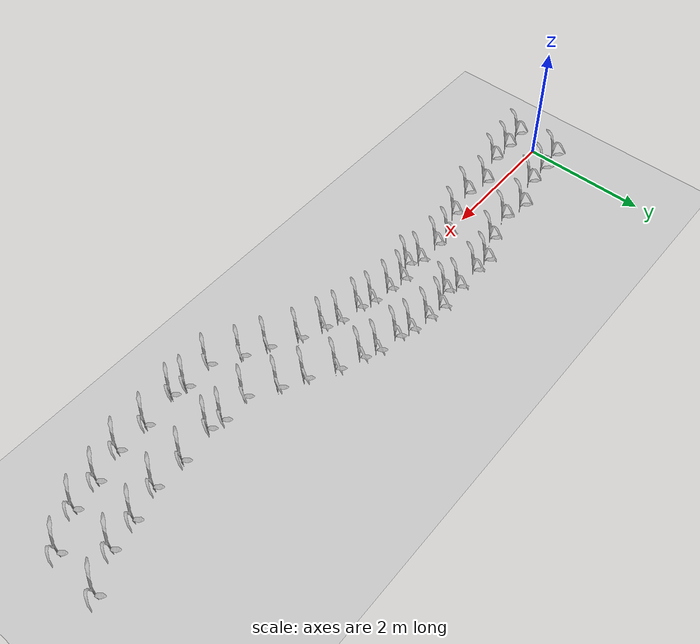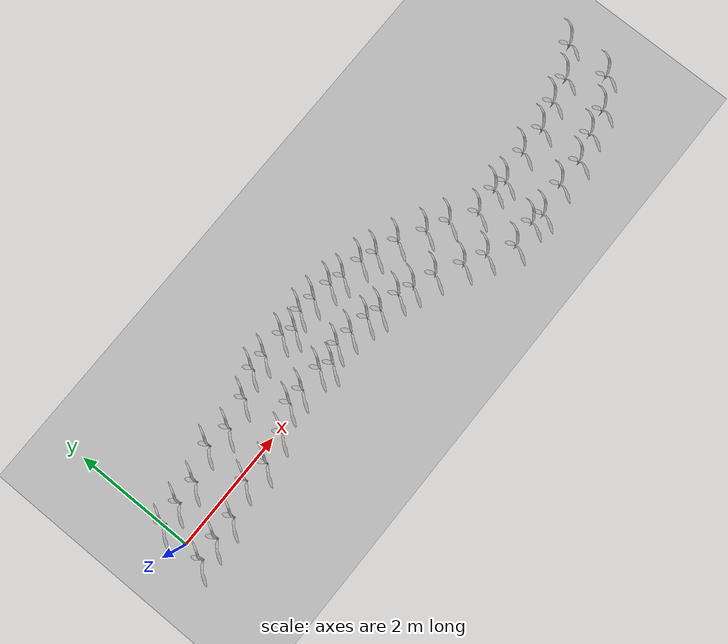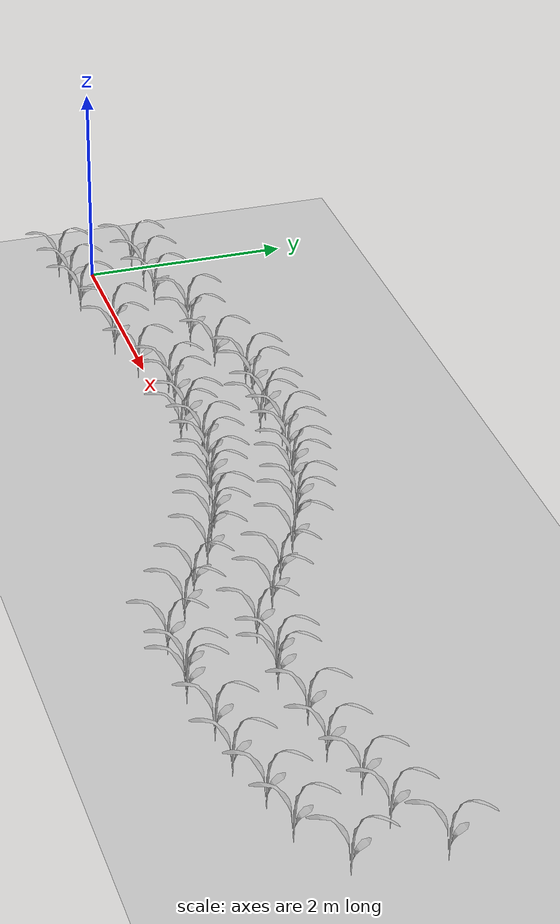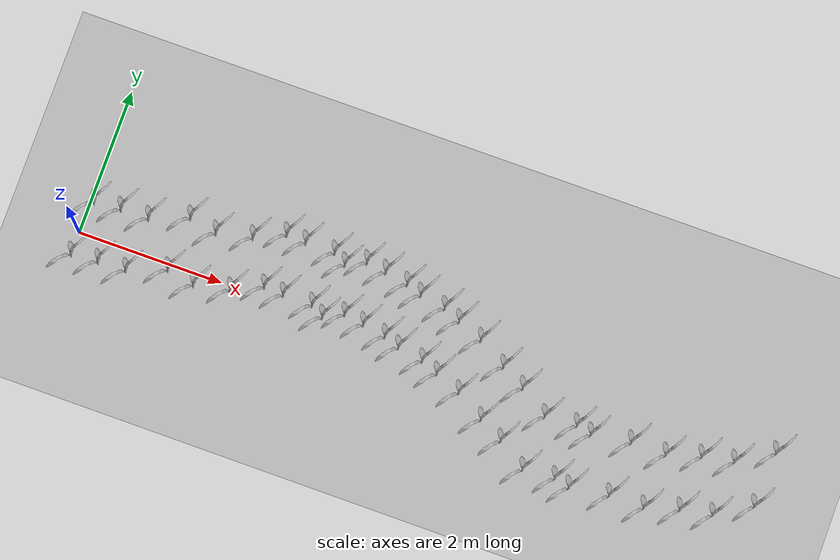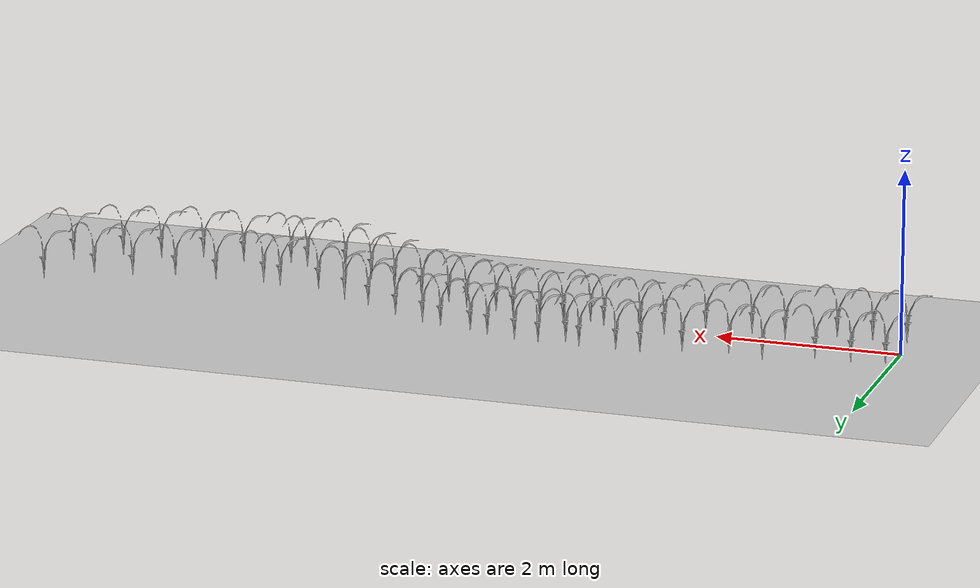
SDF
<sdf version="1.7">
 <world name="default">
  <model name="ground_plane">
   <static>1</static>
   <link name="link">
    <collision name="collision">
     <geometry><plane><normal>0 0 1</normal><size>100 100</size></plane></geometry>
     <surface>
      <contact><collide_bitmask>65535</collide_bitmask></contact>
      <friction><ode><mu>100</mu><mu2>50</mu2></ode></friction>
     </surface>
    </collision>
    <visual name="visual">
     <cast_shadows>0</cast_shadows>
     <geometry><plane><normal>0 0 1</normal><size>100 100</size></plane></geometry>
     <material>
      <script><uri>file://media/materials/scripts/gazebo.material</uri><name>Gazebo/Grey</name></script>
     </material>
    </visual>
   </link>
  </model>
  <model name="maize_row">
   <model name="maize_02">
    <pose>-4.63661 0.027408 0 0 -0 0</pose>
    <link name="maize_02_link">
     <inertial>
      <pose>0 0 0.01 0 -0 0</pose>
      <mass>0.3</mass>
      <inertia>
       <ixx>0.00334167</ixx>
       <ixy>0</ixy>
       <ixz>0</ixz>
       <iyy>0.00334167</iyy>
       <iyz>0</iyz>
       <izz>1.66667e-05</izz>
      </inertia>
      <pose>0 0 0.1 0 -0 0</pose>
     </inertial>
     <collision name="collision">
      <pose>0 0 0.2 0 -0 0</pose>
      <geometry><box><size>0.02 0.02 0.4</size></box></geometry>
      <surface><friction><ode><mu>10</mu><mu2>10</mu2></ode></friction></surface>
     </collision>
     <visual name="visual">
      <geometry>
       <mesh><uri>model://maize_02/meshes/maize_02.dae</uri><scale>0.683166 0.683166 0.683166</scale></mesh>
      </geometry>
     </visual>
    </link>
   </model>
   <model name="maize_02_clone">
    <pose>-4.27241 0.05616 0 0 -0 0</pose>
    <link name="maize_02_link">
     <inertial>
      <pose>0 0 0.01 0 -0 0</pose>
      <mass>0.3</mass>
      <inertia>
       <ixx>0.00334167</ixx>
       <ixy>0</ixy>
       <ixz>0</ixz>
       <iyy>0.00334167</iyy>
       <iyz>0</iyz>
       <izz>1.66667e-05</izz>
      </inertia>
      <pose>0 0 0.1 0 -0 0</pose>
     </inertial>
     <collision name="collision">
      <pose>0 0 0.2 0 -0 0</pose>
      <geometry><box><size>0.02 0.02 0.4</size></box></geometry>
      <surface><friction><ode><mu>10</mu><mu2>10</mu2></ode></friction></surface>
     </collision>
     <visual name="visual">
      <geometry>
       <mesh><uri>model://maize_02/meshes/maize_02.dae</uri><scale>0.683166 0.683166 0.683166</scale></mesh>
      </geometry>
     </visual>
    </link>
   </model>
   <model name="maize_02_clone_0">
    <pose>-3.88904 0.065744 0 0 -0 0</pose>
    <link name="maize_02_link">
     <inertial>
      <pose>0 0 0.01 0 -0 0</pose>
      <mass>0.3</mass>
      <inertia>
       <ixx>0.00334167</ixx>
       <ixy>0</ixy>
       <ixz>0</ixz>
       <iyy>0.00334167</iyy>
       <iyz>0</iyz>
       <izz>1.66667e-05</izz>
      </inertia>
      <pose>0 0 0.1 0 -0 0</pose>
     </inertial>
     <collision name="collision">
      <pose>0 0 0.2 0 -0 0</pose>
      <geometry><box><size>0.02 0.02 0.4</size></box></geometry>
      <surface><friction><ode><mu>10</mu><mu2>10</mu2></ode></friction></surface>
     </collision>
     <visual name="visual">
      <geometry>
       <mesh><uri>model://maize_02/meshes/maize_02.dae</uri><scale>0.683166 0.683166 0.683166</scale></mesh>
      </geometry>
     </visual>
    </link>
   </model>
   <model name="maize_02_clone_1">
    <pose>-3.37149 0.257428 0 0 -0 0</pose>
    <link name="maize_02_link">
     <inertial>
      <pose>0 0 0.01 0 -0 0</pose>
      <mass>0.3</mass>
      <inertia>
       <ixx>0.00334167</ixx>
       <ixy>0</ixy>
       <ixz>0</ixz>
       <iyy>0.00334167</iyy>
       <iyz>0</iyz>
       <izz>1.66667e-05</izz>
      </inertia>
      <pose>0 0 0.1 0 -0 0</pose>
     </inertial>
     <collision name="collision">
      <pose>0 0 0.2 0 -0 0</pose>
      <geometry><box><size>0.02 0.02 0.4</size></box></geometry>
      <surface><friction><ode><mu>10</mu><mu2>10</mu2></ode></friction></surface>
     </collision>
     <visual name="visual">
      <geometry>
       <mesh><uri>model://maize_02/meshes/maize_02.dae</uri><scale>0.683166 0.683166 0.683166</scale></mesh>
      </geometry>
     </visual>
    </link>
   </model>
   <model name="maize_02_clone_10">
    <pose>-0.393317 0.390237 0 0 -0 0</pose>
    <link name="maize_02_link">
     <inertial>
      <pose>0 0 0.01 0 -0 0</pose>
      <mass>0.3</mass>
      <inertia>
       <ixx>0.00334167</ixx>
       <ixy>0</ixy>
       <ixz>0</ixz>
       <iyy>0.00334167</iyy>
       <iyz>0</iyz>
       <izz>1.66667e-05</izz>
      </inertia>
      <pose>0 0 0.1 0 -0 0</pose>
     </inertial>
     <collision name="collision">
      <pose>0 0 0.2 0 -0 0</pose>
      <geometry><box><size>0.02 0.02 0.4</size></box></geometry>
      <surface><friction><ode><mu>10</mu><mu2>10</mu2></ode></friction></surface>
     </collision>
     <visual name="visual">
      <geometry>
       <mesh><uri>model://maize_02/meshes/maize_02.dae</uri><scale>0.683166 0.683166 0.683166</scale></mesh>
      </geometry>
     </visual>
    </link>
   </model>
   <model name="maize_02_clone_11">
    <pose>0.410873 0.154867 0 0 -0 0</pose>
    <link name="maize_02_link">
     <inertial>
      <pose>0 0 0.01 0 -0 0</pose>
      <mass>0.3</mass>
      <inertia>
       <ixx>0.00334167</ixx>
       <ixy>0</ixy>
       <ixz>0</ixz>
       <iyy>0.00334167</iyy>
       <iyz>0</iyz>
       <izz>1.66667e-05</izz>
      </inertia>
      <pose>0 0 0.1 0 -0 0</pose>
     </inertial>
     <collision name="collision">
      <pose>0 0 0.2 0 -0 0</pose>
      <geometry><box><size>0.02 0.02 0.4</size></box></geometry>
      <surface><friction><ode><mu>10</mu><mu2>10</mu2></ode></friction></surface>
     </collision>
     <visual name="visual">
      <geometry>
       <mesh><uri>model://maize_02/meshes/maize_02.dae</uri><scale>0.683166 0.683166 0.683166</scale></mesh>
      </geometry>
     </visual>
    </link>
   </model>
   <model name="maize_02_clone_12">
    <pose>0.175502 0.252945 0 0 -0 0</pose>
    <link name="maize_02_link">
     <inertial>
      <pose>0 0 0.01 0 -0 0</pose>
      <mass>0.3</mass>
      <inertia>
       <ixx>0.00334167</ixx>
       <ixy>0</ixy>
       <ixz>0</ixz>
       <iyy>0.00334167</iyy>
       <iyz>0</iyz>
       <izz>1.66667e-05</izz>
      </inertia>
      <pose>0 0 0.1 0 -0 0</pose>
     </inertial>
     <collision name="collision">
      <pose>0 0 0.2 0 -0 0</pose>
      <geometry><box><size>0.02 0.02 0.4</size></box></geometry>
      <surface><friction><ode><mu>10</mu><mu2>10</mu2></ode></friction></surface>
     </collision>
     <visual name="visual">
      <geometry>
       <mesh><uri>model://maize_02/meshes/maize_02.dae</uri><scale>0.683166 0.683166 0.683166</scale></mesh>
      </geometry>
     </visual>
    </link>
   </model>
   <model name="maize_02_clone_13">
    <pose>0.76395 0.017569 0 0 -0 0</pose>
    <link name="maize_02_link">
     <inertial>
      <pose>0 0 0.01 0 -0 0</pose>
      <mass>0.3</mass>
      <inertia>
       <ixx>0.00334167</ixx>
       <ixy>0</ixy>
       <ixz>0</ixz>
       <iyy>0.00334167</iyy>
       <iyz>0</iyz>
       <izz>1.66667e-05</izz>
      </inertia>
      <pose>0 0 0.1 0 -0 0</pose>
     </inertial>
     <collision name="collision">
      <pose>0 0 0.2 0 -0 0</pose>
      <geometry><box><size>0.02 0.02 0.4</size></box></geometry>
      <surface><friction><ode><mu>10</mu><mu2>10</mu2></ode></friction></surface>
     </collision>
     <visual name="visual">
      <geometry>
       <mesh><uri>model://maize_02/meshes/maize_02.dae</uri><scale>0.683166 0.683166 0.683166</scale></mesh>
      </geometry>
     </visual>
    </link>
   </model>
   <model name="maize_02_clone_14">
    <pose>1.15624 -0.217806 0 0 -0 0</pose>
    <link name="maize_02_link">
     <inertial>
      <pose>0 0 0.01 0 -0 0</pose>
      <mass>0.3</mass>
      <inertia>
       <ixx>0.00334167</ixx>
       <ixy>0</ixy>
       <ixz>0</ixz>
       <iyy>0.00334167</iyy>
       <iyz>0</iyz>
       <izz>1.66667e-05</izz>
      </inertia>
      <pose>0 0 0.1 0 -0 0</pose>
     </inertial>
     <collision name="collision">
      <pose>0 0 0.2 0 -0 0</pose>
      <geometry><box><size>0.02 0.02 0.4</size></box></geometry>
      <surface><friction><ode><mu>10</mu><mu2>10</mu2></ode></friction></surface>
     </collision>
     <visual name="visual">
      <geometry>
       <mesh><uri>model://maize_02/meshes/maize_02.dae</uri><scale>0.683166 0.683166 0.683166</scale></mesh>
      </geometry>
     </visual>
    </link>
   </model>
   <model name="maize_02_clone_15">
    <pose>1.48967 -0.39434 0 0 -0 0</pose>
    <link name="maize_02_link">
     <inertial>
      <pose>0 0 0.01 0 -0 0</pose>
      <mass>0.3</mass>
      <inertia>
       <ixx>0.00334167</ixx>
       <ixy>0</ixy>
       <ixz>0</ixz>
       <iyy>0.00334167</iyy>
       <iyz>0</iyz>
       <izz>1.66667e-05</izz>
      </inertia>
      <pose>0 0 0.1 0 -0 0</pose>
     </inertial>
     <collision name="collision">
      <pose>0 0 0.2 0 -0 0</pose>
      <geometry><box><size>0.02 0.02 0.4</size></box></geometry>
      <surface><friction><ode><mu>10</mu><mu2>10</mu2></ode></friction></surface>
     </collision>
     <visual name="visual">
      <geometry>
       <mesh><uri>model://maize_02/meshes/maize_02.dae</uri><scale>0.683166 0.683166 0.683166</scale></mesh>
      </geometry>
     </visual>
    </link>
   </model>
   <model name="maize_02_clone_16">
    <pose>1.88196 -0.649333 0 0 -0 0</pose>
    <link name="maize_02_link">
     <inertial>
      <pose>0 0 0.01 0 -0 0</pose>
      <mass>0.3</mass>
      <inertia>
       <ixx>0.00334167</ixx>
       <ixy>0</ixy>
       <ixz>0</ixz>
       <iyy>0.00334167</iyy>
       <iyz>0</iyz>
       <izz>1.66667e-05</izz>
      </inertia>
      <pose>0 0 0.1 0 -0 0</pose>
     </inertial>
     <collision name="collision">
      <pose>0 0 0.2 0 -0 0</pose>
      <geometry><box><size>0.02 0.02 0.4</size></box></geometry>
      <surface><friction><ode><mu>10</mu><mu2>10</mu2></ode></friction></surface>
     </collision>
     <visual name="visual">
      <geometry>
       <mesh><uri>model://maize_02/meshes/maize_02.dae</uri><scale>0.683166 0.683166 0.683166</scale></mesh>
      </geometry>
     </visual>
    </link>
   </model>
   <model name="maize_02_clone_17">
    <pose>2.52627 -0.672048 0 0 -0 0</pose>
    <link name="maize_02_link">
     <inertial>
      <pose>0 0 0.01 0 -0 0</pose>
      <mass>0.3</mass>
      <inertia>
       <ixx>0.00334167</ixx>
       <ixy>0</ixy>
       <ixz>0</ixz>
       <iyy>0.00334167</iyy>
       <iyz>0</iyz>
       <izz>1.66667e-05</izz>
      </inertia>
      <pose>0 0 0.1 0 -0 0</pose>
     </inertial>
     <collision name="collision">
      <pose>0 0 0.2 0 -0 0</pose>
      <geometry><box><size>0.02 0.02 0.4</size></box></geometry>
      <surface><friction><ode><mu>10</mu><mu2>10</mu2></ode></friction></surface>
     </collision>
     <visual name="visual">
      <geometry>
       <mesh><uri>model://maize_02/meshes/maize_02.dae</uri><scale>0.683166 0.683166 0.683166</scale></mesh>
      </geometry>
     </visual>
    </link>
   </model>
   <model name="maize_02_clone_18">
    <pose>2.3152 -0.619273 0 0 -0 0</pose>
    <link name="maize_02_link">
     <inertial>
      <pose>0 0 0.01 0 -0 0</pose>
      <mass>0.3</mass>
      <inertia>
       <ixx>0.00334167</ixx>
       <ixy>0</ixy>
       <ixz>0</ixz>
       <iyy>0.00334167</iyy>
       <iyz>0</iyz>
       <izz>1.66667e-05</izz>
      </inertia>
      <pose>0 0 0.1 0 -0 0</pose>
     </inertial>
     <collision name="collision">
      <pose>0 0 0.2 0 -0 0</pose>
      <geometry><box><size>0.02 0.02 0.4</size></box></geometry>
      <surface><friction><ode><mu>10</mu><mu2>10</mu2></ode></friction></surface>
     </collision>
     <visual name="visual">
      <geometry>
       <mesh><uri>model://maize_02/meshes/maize_02.dae</uri><scale>0.683166 0.683166 0.683166</scale></mesh>
      </geometry>
     </visual>
    </link>
   </model>
   <model name="maize_02_clone_19">
    <pose>3.05425 -0.592874 0 0 -0 0</pose>
    <link name="maize_02_link">
     <inertial>
      <pose>0 0 0.01 0 -0 0</pose>
      <mass>0.3</mass>
      <inertia>
       <ixx>0.00334167</ixx>
       <ixy>0</ixy>
       <ixz>0</ixz>
       <iyy>0.00334167</iyy>
       <iyz>0</iyz>
       <izz>1.66667e-05</izz>
      </inertia>
      <pose>0 0 0.1 0 -0 0</pose>
     </inertial>
     <collision name="collision">
      <pose>0 0 0.2 0 -0 0</pose>
      <geometry><box><size>0.02 0.02 0.4</size></box></geometry>
      <surface><friction><ode><mu>10</mu><mu2>10</mu2></ode></friction></surface>
     </collision>
     <visual name="visual">
      <geometry>
       <mesh><uri>model://maize_02/meshes/maize_02.dae</uri><scale>0.683166 0.683166 0.683166</scale></mesh>
      </geometry>
     </visual>
    </link>
   </model>
   <model name="maize_02_clone_2">
    <pose>-2.98813 0.180754 0 0 -0 0</pose>
    <link name="maize_02_link">
     <inertial>
      <pose>0 0 0.01 0 -0 0</pose>
      <mass>0.3</mass>
      <inertia>
       <ixx>0.00334167</ixx>
       <ixy>0</ixy>
       <ixz>0</ixz>
       <iyy>0.00334167</iyy>
       <iyz>0</iyz>
       <izz>1.66667e-05</izz>
      </inertia>
      <pose>0 0 0.1 0 -0 0</pose>
     </inertial>
     <collision name="collision">
      <pose>0 0 0.2 0 -0 0</pose>
      <geometry><box><size>0.02 0.02 0.4</size></box></geometry>
      <surface><friction><ode><mu>10</mu><mu2>10</mu2></ode></friction></surface>
     </collision>
     <visual name="visual">
      <geometry>
       <mesh><uri>model://maize_02/meshes/maize_02.dae</uri><scale>0.683166 0.683166 0.683166</scale></mesh>
      </geometry>
     </visual>
    </link>
   </model>
   <model name="maize_02_clone_20">
    <pose>3.5294 -0.592874 0 0 -0 0</pose>
    <link name="maize_02_link">
     <inertial>
      <pose>0 0 0.01 0 -0 0</pose>
      <mass>0.3</mass>
      <inertia>
       <ixx>0.00334167</ixx>
       <ixy>0</ixy>
       <ixz>0</ixz>
       <iyy>0.00334167</iyy>
       <iyz>0</iyz>
       <izz>1.66667e-05</izz>
      </inertia>
      <pose>0 0 0.1 0 -0 0</pose>
     </inertial>
     <collision name="collision">
      <pose>0 0 0.2 0 -0 0</pose>
      <geometry><box><size>0.02 0.02 0.4</size></box></geometry>
      <surface><friction><ode><mu>10</mu><mu2>10</mu2></ode></friction></surface>
     </collision>
     <visual name="visual">
      <geometry>
       <mesh><uri>model://maize_02/meshes/maize_02.dae</uri><scale>0.683166 0.683166 0.683166</scale></mesh>
      </geometry>
     </visual>
    </link>
   </model>
   <model name="maize_02_clone_21">
    <pose>3.97801 -0.460902 0 0 -0 0</pose>
    <link name="maize_02_link">
     <inertial>
      <pose>0 0 0.01 0 -0 0</pose>
      <mass>0.3</mass>
      <inertia>
       <ixx>0.00334167</ixx>
       <ixy>0</ixy>
       <ixz>0</ixz>
       <iyy>0.00334167</iyy>
       <iyz>0</iyz>
       <izz>1.66667e-05</izz>
      </inertia>
      <pose>0 0 0.1 0 -0 0</pose>
     </inertial>
     <collision name="collision">
      <pose>0 0 0.2 0 -0 0</pose>
      <geometry><box><size>0.02 0.02 0.4</size></box></geometry>
      <surface><friction><ode><mu>10</mu><mu2>10</mu2></ode></friction></surface>
     </collision>
     <visual name="visual">
      <geometry>
       <mesh><uri>model://maize_02/meshes/maize_02.dae</uri><scale>0.683166 0.683166 0.683166</scale></mesh>
      </geometry>
     </visual>
    </link>
   </model>
   <model name="maize_02_clone_22">
    <pose>4.40033 -0.381713 0 0 -0 0</pose>
    <link name="maize_02_link">
     <inertial>
      <pose>0 0 0.01 0 -0 0</pose>
      <mass>0.3</mass>
      <inertia>
       <ixx>0.00334167</ixx>
       <ixy>0</ixy>
       <ixz>0</ixz>
       <iyy>0.00334167</iyy>
       <iyz>0</iyz>
       <izz>1.66667e-05</izz>
      </inertia>
      <pose>0 0 0.1 0 -0 0</pose>
     </inertial>
     <collision name="collision">
      <pose>0 0 0.2 0 -0 0</pose>
      <geometry><box><size>0.02 0.02 0.4</size></box></geometry>
      <surface><friction><ode><mu>10</mu><mu2>10</mu2></ode></friction></surface>
     </collision>
     <visual name="visual">
      <geometry>
       <mesh><uri>model://maize_02/meshes/maize_02.dae</uri><scale>0.683166 0.683166 0.683166</scale></mesh>
      </geometry>
     </visual>
    </link>
   </model>
   <model name="maize_02_clone_23">
    <pose>4.87542 -0.091378 0 0 -0 0</pose>
    <link name="maize_02_link">
     <inertial>
      <pose>0 0 0.01 0 -0 0</pose>
      <mass>0.3</mass>
      <inertia>
       <ixx>0.00334167</ixx>
       <ixy>0</ixy>
       <ixz>0</ixz>
       <iyy>0.00334167</iyy>
       <iyz>0</iyz>
       <izz>1.66667e-05</izz>
      </inertia>
      <pose>0 0 0.1 0 -0 0</pose>
     </inertial>
     <collision name="collision">
      <pose>0 0 0.2 0 -0 0</pose>
      <geometry><box><size>0.02 0.02 0.4</size></box></geometry>
      <surface><friction><ode><mu>10</mu><mu2>10</mu2></ode></friction></surface>
     </collision>
     <visual name="visual">
      <geometry>
       <mesh><uri>model://maize_02/meshes/maize_02.dae</uri><scale>0.683166 0.683166 0.683166</scale></mesh>
      </geometry>
     </visual>
    </link>
   </model>
   <model name="maize_02_clone_24">
    <pose>-0.987177 0.483854 0 0 -0 0</pose>
    <link name="maize_02_link">
     <inertial>
      <pose>0 0 0.01 0 -0 0</pose>
      <mass>0.3</mass>
      <inertia>
       <ixx>0.00334167</ixx>
       <ixy>0</ixy>
       <ixz>0</ixz>
       <iyy>0.00334167</iyy>
       <iyz>0</iyz>
       <izz>1.66667e-05</izz>
      </inertia>
      <pose>0 0 0.1 0 -0 0</pose>
     </inertial>
     <collision name="collision">
      <pose>0 0 0.2 0 -0 0</pose>
      <geometry><box><size>0.02 0.02 0.4</size></box></geometry>
      <surface><friction><ode><mu>10</mu><mu2>10</mu2></ode></friction></surface>
     </collision>
     <visual name="visual">
      <geometry>
       <mesh><uri>model://maize_02/meshes/maize_02.dae</uri><scale>0.683166 0.683166 0.683166</scale></mesh>
      </geometry>
     </visual>
    </link>
   </model>
   <model name="maize_02_clone_3">
    <pose>-2.50892 0.28618 0 0 -0 0</pose>
    <link name="maize_02_link">
     <inertial>
      <pose>0 0 0.01 0 -0 0</pose>
      <mass>0.3</mass>
      <inertia>
       <ixx>0.00334167</ixx>
       <ixy>0</ixy>
       <ixz>0</ixz>
       <iyy>0.00334167</iyy>
       <iyz>0</iyz>
       <izz>1.66667e-05</izz>
      </inertia>
      <pose>0 0 0.1 0 -0 0</pose>
     </inertial>
     <collision name="collision">
      <pose>0 0 0.2 0 -0 0</pose>
      <geometry><box><size>0.02 0.02 0.4</size></box></geometry>
      <surface><friction><ode><mu>10</mu><mu2>10</mu2></ode></friction></surface>
     </collision>
     <visual name="visual">
      <geometry>
       <mesh><uri>model://maize_02/meshes/maize_02.dae</uri><scale>0.683166 0.683166 0.683166</scale></mesh>
      </geometry>
     </visual>
    </link>
   </model>
   <model name="maize_02_clone_4">
    <pose>-1.83451 0.458469 0 0 -0 0</pose>
    <link name="maize_02_link">
     <inertial>
      <pose>0 0 0.01 0 -0 0</pose>
      <mass>0.3</mass>
      <inertia>
       <ixx>0.00334167</ixx>
       <ixy>0</ixy>
       <ixz>0</ixz>
       <iyy>0.00334167</iyy>
       <iyz>0</iyz>
       <izz>1.66667e-05</izz>
      </inertia>
      <pose>0 0 0.1 0 -0 0</pose>
     </inertial>
     <collision name="collision">
      <pose>0 0 0.2 0 -0 0</pose>
      <geometry><box><size>0.02 0.02 0.4</size></box></geometry>
      <surface><friction><ode><mu>10</mu><mu2>10</mu2></ode></friction></surface>
     </collision>
     <visual name="visual">
      <geometry>
       <mesh><uri>model://maize_02/meshes/maize_02.dae</uri><scale>0.683166 0.683166 0.683166</scale></mesh>
      </geometry>
     </visual>
    </link>
   </model>
   <model name="maize_02_clone_5">
    <pose>-1.25106 0.353746 0 0 -0 0</pose>
    <link name="maize_02_link">
     <inertial>
      <pose>0 0 0.01 0 -0 0</pose>
      <mass>0.3</mass>
      <inertia>
       <ixx>0.00334167</ixx>
       <ixy>0</ixy>
       <ixz>0</ixz>
       <iyy>0.00334167</iyy>
       <iyz>0</iyz>
       <izz>1.66667e-05</izz>
      </inertia>
      <pose>0 0 0.1 0 -0 0</pose>
     </inertial>
     <collision name="collision">
      <pose>0 0 0.2 0 -0 0</pose>
      <geometry><box><size>0.02 0.02 0.4</size></box></geometry>
      <surface><friction><ode><mu>10</mu><mu2>10</mu2></ode></friction></surface>
     </collision>
     <visual name="visual">
      <geometry>
       <mesh><uri>model://maize_02/meshes/maize_02.dae</uri><scale>0.683166 0.683166 0.683166</scale></mesh>
      </geometry>
     </visual>
    </link>
   </model>
   <model name="maize_02_clone_6">
    <pose>-1.43059 0.458469 0 0 -0 0</pose>
    <link name="maize_02_link">
     <inertial>
      <pose>0 0 0.01 0 -0 0</pose>
      <mass>0.3</mass>
      <inertia>
       <ixx>0.00334167</ixx>
       <ixy>0</ixy>
       <ixz>0</ixz>
       <iyy>0.00334167</iyy>
       <iyz>0</iyz>
       <izz>1.66667e-05</izz>
      </inertia>
      <pose>0 0 0.1 0 -0 0</pose>
     </inertial>
     <collision name="collision">
      <pose>0 0 0.2 0 -0 0</pose>
      <geometry><box><size>0.02 0.02 0.4</size></box></geometry>
      <surface><friction><ode><mu>10</mu><mu2>10</mu2></ode></friction></surface>
     </collision>
     <visual name="visual">
      <geometry>
       <mesh><uri>model://maize_02/meshes/maize_02.dae</uri><scale>0.683166 0.683166 0.683166</scale></mesh>
      </geometry>
     </visual>
    </link>
   </model>
   <model name="maize_02_clone_7">
    <pose>-2.10378 0.473427 0 0 -0 0</pose>
    <link name="maize_02_link">
     <inertial>
      <pose>0 0 0.01 0 -0 0</pose>
      <mass>0.3</mass>
      <inertia>
       <ixx>0.00334167</ixx>
       <ixy>0</ixy>
       <ixz>0</ixz>
       <iyy>0.00334167</iyy>
       <iyz>0</iyz>
       <izz>1.66667e-05</izz>
      </inertia>
      <pose>0 0 0.1 0 -0 0</pose>
     </inertial>
     <collision name="collision">
      <pose>0 0 0.2 0 -0 0</pose>
      <geometry><box><size>0.02 0.02 0.4</size></box></geometry>
      <surface><friction><ode><mu>10</mu><mu2>10</mu2></ode></friction></surface>
     </collision>
     <visual name="visual">
      <geometry>
       <mesh><uri>model://maize_02/meshes/maize_02.dae</uri><scale>0.683166 0.683166 0.683166</scale></mesh>
      </geometry>
     </visual>
    </link>
   </model>
   <model name="maize_02_clone_8">
    <pose>-0.712516 0.443508 0 0 -0 0</pose>
    <link name="maize_02_link">
     <inertial>
      <pose>0 0 0.01 0 -0 0</pose>
      <mass>0.3</mass>
      <inertia>
       <ixx>0.00334167</ixx>
       <ixy>0</ixy>
       <ixz>0</ixz>
       <iyy>0.00334167</iyy>
       <iyz>0</iyz>
       <izz>1.66667e-05</izz>
      </inertia>
      <pose>0 0 0.1 0 -0 0</pose>
     </inertial>
     <collision name="collision">
      <pose>0 0 0.2 0 -0 0</pose>
      <geometry><box><size>0.02 0.02 0.4</size></box></geometry>
      <surface><friction><ode><mu>10</mu><mu2>10</mu2></ode></friction></surface>
     </collision>
     <visual name="visual">
      <geometry>
       <mesh><uri>model://maize_02/meshes/maize_02.dae</uri><scale>0.683166 0.683166 0.683166</scale></mesh>
      </geometry>
     </visual>
    </link>
   </model>
   <model name="maize_02_clone_9">
    <pose>-0.177553 0.311777 0 0 -0 0</pose>
    <link name="maize_02_link">
     <inertial>
      <pose>0 0 0.01 0 -0 0</pose>
      <mass>0.3</mass>
      <inertia>
       <ixx>0.00334167</ixx>
       <ixy>0</ixy>
       <ixz>0</ixz>
       <iyy>0.00334167</iyy>
       <iyz>0</iyz>
       <izz>1.66667e-05</izz>
      </inertia>
      <pose>0 0 0.1 0 -0 0</pose>
     </inertial>
     <collision name="collision">
      <pose>0 0 0.2 0 -0 0</pose>
      <geometry><box><size>0.02 0.02 0.4</size></box></geometry>
      <surface><friction><ode><mu>10</mu><mu2>10</mu2></ode></friction></surface>
     </collision>
     <visual name="visual">
      <geometry>
       <mesh><uri>model://maize_02/meshes/maize_02.dae</uri><scale>0.683166 0.683166 0.683166</scale></mesh>
      </geometry>
     </visual>
    </link>
   </model>
   <static>0</static>
   <pose>4.70004 0.375 2e-05 0 -4e-06 0</pose>
  </model>
  <model name="maize_row_clone">
   <model name="maize_02">
    <pose>-4.63661 0.027408 0 0 -0 0</pose>
    <link name="maize_02_link">
     <inertial>
      <pose>0 0 0.01 0 -0 0</pose>
      <mass>0.3</mass>
      <inertia>
       <ixx>0.00334167</ixx>
       <ixy>0</ixy>
       <ixz>0</ixz>
       <iyy>0.00334167</iyy>
       <iyz>0</iyz>
       <izz>1.66667e-05</izz>
      </inertia>
      <pose>0 0 0.1 0 -0 0</pose>
     </inertial>
     <collision name="collision">
      <pose>0 0 0.2 0 -0 0</pose>
      <geometry><box><size>0.02 0.02 0.4</size></box></geometry>
      <surface><friction><ode><mu>10</mu><mu2>10</mu2></ode></friction></surface>
     </collision>
     <visual name="visual">
      <geometry>
       <mesh><uri>model://maize_02/meshes/maize_02.dae</uri><scale>0.683166 0.683166 0.683166</scale></mesh>
      </geometry>
     </visual>
    </link>
   </model>
   <model name="maize_02_clone">
    <pose>-4.27241 0.05616 0 0 -0 0</pose>
    <link name="maize_02_link">
     <inertial>
      <pose>0 0 0.01 0 -0 0</pose>
      <mass>0.3</mass>
      <inertia>
       <ixx>0.00334167</ixx>
       <ixy>0</ixy>
       <ixz>0</ixz>
       <iyy>0.00334167</iyy>
       <iyz>0</iyz>
       <izz>1.66667e-05</izz>
      </inertia>
      <pose>0 0 0.1 0 -0 0</pose>
     </inertial>
     <collision name="collision">
      <pose>0 0 0.2 0 -0 0</pose>
      <geometry><box><size>0.02 0.02 0.4</size></box></geometry>
      <surface><friction><ode><mu>10</mu><mu2>10</mu2></ode></friction></surface>
     </collision>
     <visual name="visual">
      <geometry>
       <mesh><uri>model://maize_02/meshes/maize_02.dae</uri><scale>0.683166 0.683166 0.683166</scale></mesh>
      </geometry>
     </visual>
    </link>
   </model>
   <model name="maize_02_clone_0">
    <pose>-3.88904 0.065744 0 0 -0 0</pose>
    <link name="maize_02_link">
     <inertial>
      <pose>0 0 0.01 0 -0 0</pose>
      <mass>0.3</mass>
      <inertia>
       <ixx>0.00334167</ixx>
       <ixy>0</ixy>
       <ixz>0</ixz>
       <iyy>0.00334167</iyy>
       <iyz>0</iyz>
       <izz>1.66667e-05</izz>
      </inertia>
      <pose>0 0 0.1 0 -0 0</pose>
     </inertial>
     <collision name="collision">
      <pose>0 0 0.2 0 -0 0</pose>
      <geometry><box><size>0.02 0.02 0.4</size></box></geometry>
      <surface><friction><ode><mu>10</mu><mu2>10</mu2></ode></friction></surface>
     </collision>
     <visual name="visual">
      <geometry>
       <mesh><uri>model://maize_02/meshes/maize_02.dae</uri><scale>0.683166 0.683166 0.683166</scale></mesh>
      </geometry>
     </visual>
    </link>
   </model>
   <model name="maize_02_clone_1">
    <pose>-3.37149 0.257428 0 0 -0 0</pose>
    <link name="maize_02_link">
     <inertial>
      <pose>0 0 0.01 0 -0 0</pose>
      <mass>0.3</mass>
      <inertia>
       <ixx>0.00334167</ixx>
       <ixy>0</ixy>
       <ixz>0</ixz>
       <iyy>0.00334167</iyy>
       <iyz>0</iyz>
       <izz>1.66667e-05</izz>
      </inertia>
      <pose>0 0 0.1 0 -0 0</pose>
     </inertial>
     <collision name="collision">
      <pose>0 0 0.2 0 -0 0</pose>
      <geometry><box><size>0.02 0.02 0.4</size></box></geometry>
      <surface><friction><ode><mu>10</mu><mu2>10</mu2></ode></friction></surface>
     </collision>
     <visual name="visual">
      <geometry>
       <mesh><uri>model://maize_02/meshes/maize_02.dae</uri><scale>0.683166 0.683166 0.683166</scale></mesh>
      </geometry>
     </visual>
    </link>
   </model>
   <model name="maize_02_clone_10">
    <pose>-0.393317 0.390237 0 0 -0 0</pose>
    <link name="maize_02_link">
     <inertial>
      <pose>0 0 0.01 0 -0 0</pose>
      <mass>0.3</mass>
      <inertia>
       <ixx>0.00334167</ixx>
       <ixy>0</ixy>
       <ixz>0</ixz>
       <iyy>0.00334167</iyy>
       <iyz>0</iyz>
       <izz>1.66667e-05</izz>
      </inertia>
      <pose>0 0 0.1 0 -0 0</pose>
     </inertial>
     <collision name="collision">
      <pose>0 0 0.2 0 -0 0</pose>
      <geometry><box><size>0.02 0.02 0.4</size></box></geometry>
      <surface><friction><ode><mu>10</mu><mu2>10</mu2></ode></friction></surface>
     </collision>
     <visual name="visual">
      <geometry>
       <mesh><uri>model://maize_02/meshes/maize_02.dae</uri><scale>0.683166 0.683166 0.683166</scale></mesh>
      </geometry>
     </visual>
    </link>
   </model>
   <model name="maize_02_clone_11">
    <pose>0.410873 0.154867 0 0 -0 0</pose>
    <link name="maize_02_link">
     <inertial>
      <pose>0 0 0.01 0 -0 0</pose>
      <mass>0.3</mass>
      <inertia>
       <ixx>0.00334167</ixx>
       <ixy>0</ixy>
       <ixz>0</ixz>
       <iyy>0.00334167</iyy>
       <iyz>0</iyz>
       <izz>1.66667e-05</izz>
      </inertia>
      <pose>0 0 0.1 0 -0 0</pose>
     </inertial>
     <collision name="collision">
      <pose>0 0 0.2 0 -0 0</pose>
      <geometry><box><size>0.02 0.02 0.4</size></box></geometry>
      <surface><friction><ode><mu>10</mu><mu2>10</mu2></ode></friction></surface>
     </collision>
     <visual name="visual">
      <geometry>
       <mesh><uri>model://maize_02/meshes/maize_02.dae</uri><scale>0.683166 0.683166 0.683166</scale></mesh>
      </geometry>
     </visual>
    </link>
   </model>
   <model name="maize_02_clone_12">
    <pose>0.175502 0.252945 0 0 -0 0</pose>
    <link name="maize_02_link">
     <inertial>
      <pose>0 0 0.01 0 -0 0</pose>
      <mass>0.3</mass>
      <inertia>
       <ixx>0.00334167</ixx>
       <ixy>0</ixy>
       <ixz>0</ixz>
       <iyy>0.00334167</iyy>
       <iyz>0</iyz>
       <izz>1.66667e-05</izz>
      </inertia>
      <pose>0 0 0.1 0 -0 0</pose>
     </inertial>
     <collision name="collision">
      <pose>0 0 0.2 0 -0 0</pose>
      <geometry><box><size>0.02 0.02 0.4</size></box></geometry>
      <surface><friction><ode><mu>10</mu><mu2>10</mu2></ode></friction></surface>
     </collision>
     <visual name="visual">
      <geometry>
       <mesh><uri>model://maize_02/meshes/maize_02.dae</uri><scale>0.683166 0.683166 0.683166</scale></mesh>
      </geometry>
     </visual>
    </link>
   </model>
   <model name="maize_02_clone_13">
    <pose>0.76395 0.017569 0 0 -0 0</pose>
    <link name="maize_02_link">
     <inertial>
      <pose>0 0 0.01 0 -0 0</pose>
      <mass>0.3</mass>
      <inertia>
       <ixx>0.00334167</ixx>
       <ixy>0</ixy>
       <ixz>0</ixz>
       <iyy>0.00334167</iyy>
       <iyz>0</iyz>
       <izz>1.66667e-05</izz>
      </inertia>
      <pose>0 0 0.1 0 -0 0</pose>
     </inertial>
     <collision name="collision">
      <pose>0 0 0.2 0 -0 0</pose>
      <geometry><box><size>0.02 0.02 0.4</size></box></geometry>
      <surface><friction><ode><mu>10</mu><mu2>10</mu2></ode></friction></surface>
     </collision>
     <visual name="visual">
      <geometry>
       <mesh><uri>model://maize_02/meshes/maize_02.dae</uri><scale>0.683166 0.683166 0.683166</scale></mesh>
      </geometry>
     </visual>
    </link>
   </model>
   <model name="maize_02_clone_14">
    <pose>1.15624 -0.217806 0 0 -0 0</pose>
    <link name="maize_02_link">
     <inertial>
      <pose>0 0 0.01 0 -0 0</pose>
      <mass>0.3</mass>
      <inertia>
       <ixx>0.00334167</ixx>
       <ixy>0</ixy>
       <ixz>0</ixz>
       <iyy>0.00334167</iyy>
       <iyz>0</iyz>
       <izz>1.66667e-05</izz>
      </inertia>
      <pose>0 0 0.1 0 -0 0</pose>
     </inertial>
     <collision name="collision">
      <pose>0 0 0.2 0 -0 0</pose>
      <geometry><box><size>0.02 0.02 0.4</size></box></geometry>
      <surface><friction><ode><mu>10</mu><mu2>10</mu2></ode></friction></surface>
     </collision>
     <visual name="visual">
      <geometry>
       <mesh><uri>model://maize_02/meshes/maize_02.dae</uri><scale>0.683166 0.683166 0.683166</scale></mesh>
      </geometry>
     </visual>
    </link>
   </model>
   <model name="maize_02_clone_15">
    <pose>1.48967 -0.39434 0 0 -0 0</pose>
    <link name="maize_02_link">
     <inertial>
      <pose>0 0 0.01 0 -0 0</pose>
      <mass>0.3</mass>
      <inertia>
       <ixx>0.00334167</ixx>
       <ixy>0</ixy>
       <ixz>0</ixz>
       <iyy>0.00334167</iyy>
       <iyz>0</iyz>
       <izz>1.66667e-05</izz>
      </inertia>
      <pose>0 0 0.1 0 -0 0</pose>
     </inertial>
     <collision name="collision">
      <pose>0 0 0.2 0 -0 0</pose>
      <geometry><box><size>0.02 0.02 0.4</size></box></geometry>
      <surface><friction><ode><mu>10</mu><mu2>10</mu2></ode></friction></surface>
     </collision>
     <visual name="visual">
      <geometry>
       <mesh><uri>model://maize_02/meshes/maize_02.dae</uri><scale>0.683166 0.683166 0.683166</scale></mesh>
      </geometry>
     </visual>
    </link>
   </model>
   <model name="maize_02_clone_16">
    <pose>1.88196 -0.649333 0 0 -0 0</pose>
    <link name="maize_02_link">
     <inertial>
      <pose>0 0 0.01 0 -0 0</pose>
      <mass>0.3</mass>
      <inertia>
       <ixx>0.00334167</ixx>
       <ixy>0</ixy>
       <ixz>0</ixz>
       <iyy>0.00334167</iyy>
       <iyz>0</iyz>
       <izz>1.66667e-05</izz>
      </inertia>
      <pose>0 0 0.1 0 -0 0</pose>
     </inertial>
     <collision name="collision">
      <pose>0 0 0.2 0 -0 0</pose>
      <geometry><box><size>0.02 0.02 0.4</size></box></geometry>
      <surface><friction><ode><mu>10</mu><mu2>10</mu2></ode></friction></surface>
     </collision>
     <visual name="visual">
      <geometry>
       <mesh><uri>model://maize_02/meshes/maize_02.dae</uri><scale>0.683166 0.683166 0.683166</scale></mesh>
      </geometry>
     </visual>
    </link>
   </model>
   <model name="maize_02_clone_17">
    <pose>2.52627 -0.672048 0 0 -0 0</pose>
    <link name="maize_02_link">
     <inertial>
      <pose>0 0 0.01 0 -0 0</pose>
      <mass>0.3</mass>
      <inertia>
       <ixx>0.00334167</ixx>
       <ixy>0</ixy>
       <ixz>0</ixz>
       <iyy>0.00334167</iyy>
       <iyz>0</iyz>
       <izz>1.66667e-05</izz>
      </inertia>
      <pose>0 0 0.1 0 -0 0</pose>
     </inertial>
     <collision name="collision">
      <pose>0 0 0.2 0 -0 0</pose>
      <geometry><box><size>0.02 0.02 0.4</size></box></geometry>
      <surface><friction><ode><mu>10</mu><mu2>10</mu2></ode></friction></surface>
     </collision>
     <visual name="visual">
      <geometry>
       <mesh><uri>model://maize_02/meshes/maize_02.dae</uri><scale>0.683166 0.683166 0.683166</scale></mesh>
      </geometry>
     </visual>
    </link>
   </model>
   <model name="maize_02_clone_18">
    <pose>2.3152 -0.619273 0 0 -0 0</pose>
    <link name="maize_02_link">
     <inertial>
      <pose>0 0 0.01 0 -0 0</pose>
      <mass>0.3</mass>
      <inertia>
       <ixx>0.00334167</ixx>
       <ixy>0</ixy>
       <ixz>0</ixz>
       <iyy>0.00334167</iyy>
       <iyz>0</iyz>
       <izz>1.66667e-05</izz>
      </inertia>
      <pose>0 0 0.1 0 -0 0</pose>
     </inertial>
     <collision name="collision">
      <pose>0 0 0.2 0 -0 0</pose>
      <geometry><box><size>0.02 0.02 0.4</size></box></geometry>
      <surface><friction><ode><mu>10</mu><mu2>10</mu2></ode></friction></surface>
     </collision>
     <visual name="visual">
      <geometry>
       <mesh><uri>model://maize_02/meshes/maize_02.dae</uri><scale>0.683166 0.683166 0.683166</scale></mesh>
      </geometry>
     </visual>
    </link>
   </model>
   <model name="maize_02_clone_19">
    <pose>3.05425 -0.592874 0 0 -0 0</pose>
    <link name="maize_02_link">
     <inertial>
      <pose>0 0 0.01 0 -0 0</pose>
      <mass>0.3</mass>
      <inertia>
       <ixx>0.00334167</ixx>
       <ixy>0</ixy>
       <ixz>0</ixz>
       <iyy>0.00334167</iyy>
       <iyz>0</iyz>
       <izz>1.66667e-05</izz>
      </inertia>
      <pose>0 0 0.1 0 -0 0</pose>
     </inertial>
     <collision name="collision">
      <pose>0 0 0.2 0 -0 0</pose>
      <geometry><box><size>0.02 0.02 0.4</size></box></geometry>
      <surface><friction><ode><mu>10</mu><mu2>10</mu2></ode></friction></surface>
     </collision>
     <visual name="visual">
      <geometry>
       <mesh><uri>model://maize_02/meshes/maize_02.dae</uri><scale>0.683166 0.683166 0.683166</scale></mesh>
      </geometry>
     </visual>
    </link>
   </model>
   <model name="maize_02_clone_2">
    <pose>-2.98813 0.180754 0 0 -0 0</pose>
    <link name="maize_02_link">
     <inertial>
      <pose>0 0 0.01 0 -0 0</pose>
      <mass>0.3</mass>
      <inertia>
       <ixx>0.00334167</ixx>
       <ixy>0</ixy>
       <ixz>0</ixz>
       <iyy>0.00334167</iyy>
       <iyz>0</iyz>
       <izz>1.66667e-05</izz>
      </inertia>
      <pose>0 0 0.1 0 -0 0</pose>
     </inertial>
     <collision name="collision">
      <pose>0 0 0.2 0 -0 0</pose>
      <geometry><box><size>0.02 0.02 0.4</size></box></geometry>
      <surface><friction><ode><mu>10</mu><mu2>10</mu2></ode></friction></surface>
     </collision>
     <visual name="visual">
      <geometry>
       <mesh><uri>model://maize_02/meshes/maize_02.dae</uri><scale>0.683166 0.683166 0.683166</scale></mesh>
      </geometry>
     </visual>
    </link>
   </model>
   <model name="maize_02_clone_20">
    <pose>3.5294 -0.592874 0 0 -0 0</pose>
    <link name="maize_02_link">
     <inertial>
      <pose>0 0 0.01 0 -0 0</pose>
      <mass>0.3</mass>
      <inertia>
       <ixx>0.00334167</ixx>
       <ixy>0</ixy>
       <ixz>0</ixz>
       <iyy>0.00334167</iyy>
       <iyz>0</iyz>
       <izz>1.66667e-05</izz>
      </inertia>
      <pose>0 0 0.1 0 -0 0</pose>
     </inertial>
     <collision name="collision">
      <pose>0 0 0.2 0 -0 0</pose>
      <geometry><box><size>0.02 0.02 0.4</size></box></geometry>
      <surface><friction><ode><mu>10</mu><mu2>10</mu2></ode></friction></surface>
     </collision>
     <visual name="visual">
      <geometry>
       <mesh><uri>model://maize_02/meshes/maize_02.dae</uri><scale>0.683166 0.683166 0.683166</scale></mesh>
      </geometry>
     </visual>
    </link>
   </model>
   <model name="maize_02_clone_21">
    <pose>3.97801 -0.460902 0 0 -0 0</pose>
    <link name="maize_02_link">
     <inertial>
      <pose>0 0 0.01 0 -0 0</pose>
      <mass>0.3</mass>
      <inertia>
       <ixx>0.00334167</ixx>
       <ixy>0</ixy>
       <ixz>0</ixz>
       <iyy>0.00334167</iyy>
       <iyz>0</iyz>
       <izz>1.66667e-05</izz>
      </inertia>
      <pose>0 0 0.1 0 -0 0</pose>
     </inertial>
     <collision name="collision">
      <pose>0 0 0.2 0 -0 0</pose>
      <geometry><box><size>0.02 0.02 0.4</size></box></geometry>
      <surface><friction><ode><mu>10</mu><mu2>10</mu2></ode></friction></surface>
     </collision>
     <visual name="visual">
      <geometry>
       <mesh><uri>model://maize_02/meshes/maize_02.dae</uri><scale>0.683166 0.683166 0.683166</scale></mesh>
      </geometry>
     </visual>
    </link>
   </model>
   <model name="maize_02_clone_22">
    <pose>4.40033 -0.381713 0 0 -0 0</pose>
    <link name="maize_02_link">
     <inertial>
      <pose>0 0 0.01 0 -0 0</pose>
      <mass>0.3</mass>
      <inertia>
       <ixx>0.00334167</ixx>
       <ixy>0</ixy>
       <ixz>0</ixz>
       <iyy>0.00334167</iyy>
       <iyz>0</iyz>
       <izz>1.66667e-05</izz>
      </inertia>
      <pose>0 0 0.1 0 -0 0</pose>
     </inertial>
     <collision name="collision">
      <pose>0 0 0.2 0 -0 0</pose>
      <geometry><box><size>0.02 0.02 0.4</size></box></geometry>
      <surface><friction><ode><mu>10</mu><mu2>10</mu2></ode></friction></surface>
     </collision>
     <visual name="visual">
      <geometry>
       <mesh><uri>model://maize_02/meshes/maize_02.dae</uri><scale>0.683166 0.683166 0.683166</scale></mesh>
      </geometry>
     </visual>
    </link>
   </model>
   <model name="maize_02_clone_23">
    <pose>4.87542 -0.091378 0 0 -0 0</pose>
    <link name="maize_02_link">
     <inertial>
      <pose>0 0 0.01 0 -0 0</pose>
      <mass>0.3</mass>
      <inertia>
       <ixx>0.00334167</ixx>
       <ixy>0</ixy>
       <ixz>0</ixz>
       <iyy>0.00334167</iyy>
       <iyz>0</iyz>
       <izz>1.66667e-05</izz>
      </inertia>
      <pose>0 0 0.1 0 -0 0</pose>
     </inertial>
     <collision name="collision">
      <pose>0 0 0.2 0 -0 0</pose>
      <geometry><box><size>0.02 0.02 0.4</size></box></geometry>
      <surface><friction><ode><mu>10</mu><mu2>10</mu2></ode></friction></surface>
     </collision>
     <visual name="visual">
      <geometry>
       <mesh><uri>model://maize_02/meshes/maize_02.dae</uri><scale>0.683166 0.683166 0.683166</scale></mesh>
      </geometry>
     </visual>
    </link>
   </model>
   <model name="maize_02_clone_24">
    <pose>-0.987177 0.483854 0 0 -0 0</pose>
    <link name="maize_02_link">
     <inertial>
      <pose>0 0 0.01 0 -0 0</pose>
      <mass>0.3</mass>
      <inertia>
       <ixx>0.00334167</ixx>
       <ixy>0</ixy>
       <ixz>0</ixz>
       <iyy>0.00334167</iyy>
       <iyz>0</iyz>
       <izz>1.66667e-05</izz>
      </inertia>
      <pose>0 0 0.1 0 -0 0</pose>
     </inertial>
     <collision name="collision">
      <pose>0 0 0.2 0 -0 0</pose>
      <geometry><box><size>0.02 0.02 0.4</size></box></geometry>
      <surface><friction><ode><mu>10</mu><mu2>10</mu2></ode></friction></surface>
     </collision>
     <visual name="visual">
      <geometry>
       <mesh><uri>model://maize_02/meshes/maize_02.dae</uri><scale>0.683166 0.683166 0.683166</scale></mesh>
      </geometry>
     </visual>
    </link>
   </model>
   <model name="maize_02_clone_3">
    <pose>-2.50892 0.28618 0 0 -0 0</pose>
    <link name="maize_02_link">
     <inertial>
      <pose>0 0 0.01 0 -0 0</pose>
      <mass>0.3</mass>
      <inertia>
       <ixx>0.00334167</ixx>
       <ixy>0</ixy>
       <ixz>0</ixz>
       <iyy>0.00334167</iyy>
       <iyz>0</iyz>
       <izz>1.66667e-05</izz>
      </inertia>
      <pose>0 0 0.1 0 -0 0</pose>
     </inertial>
     <collision name="collision">
      <pose>0 0 0.2 0 -0 0</pose>
      <geometry><box><size>0.02 0.02 0.4</size></box></geometry>
      <surface><friction><ode><mu>10</mu><mu2>10</mu2></ode></friction></surface>
     </collision>
     <visual name="visual">
      <geometry>
       <mesh><uri>model://maize_02/meshes/maize_02.dae</uri><scale>0.683166 0.683166 0.683166</scale></mesh>
      </geometry>
     </visual>
    </link>
   </model>
   <model name="maize_02_clone_4">
    <pose>-1.83451 0.458469 0 0 -0 0</pose>
    <link name="maize_02_link">
     <inertial>
      <pose>0 0 0.01 0 -0 0</pose>
      <mass>0.3</mass>
      <inertia>
       <ixx>0.00334167</ixx>
       <ixy>0</ixy>
       <ixz>0</ixz>
       <iyy>0.00334167</iyy>
       <iyz>0</iyz>
       <izz>1.66667e-05</izz>
      </inertia>
      <pose>0 0 0.1 0 -0 0</pose>
     </inertial>
     <collision name="collision">
      <pose>0 0 0.2 0 -0 0</pose>
      <geometry><box><size>0.02 0.02 0.4</size></box></geometry>
      <surface><friction><ode><mu>10</mu><mu2>10</mu2></ode></friction></surface>
     </collision>
     <visual name="visual">
      <geometry>
       <mesh><uri>model://maize_02/meshes/maize_02.dae</uri><scale>0.683166 0.683166 0.683166</scale></mesh>
      </geometry>
     </visual>
    </link>
   </model>
   <model name="maize_02_clone_5">
    <pose>-1.25106 0.353746 0 0 -0 0</pose>
    <link name="maize_02_link">
     <inertial>
      <pose>0 0 0.01 0 -0 0</pose>
      <mass>0.3</mass>
      <inertia>
       <ixx>0.00334167</ixx>
       <ixy>0</ixy>
       <ixz>0</ixz>
       <iyy>0.00334167</iyy>
       <iyz>0</iyz>
       <izz>1.66667e-05</izz>
      </inertia>
      <pose>0 0 0.1 0 -0 0</pose>
     </inertial>
     <collision name="collision">
      <pose>0 0 0.2 0 -0 0</pose>
      <geometry><box><size>0.02 0.02 0.4</size></box></geometry>
      <surface><friction><ode><mu>10</mu><mu2>10</mu2></ode></friction></surface>
     </collision>
     <visual name="visual">
      <geometry>
       <mesh><uri>model://maize_02/meshes/maize_02.dae</uri><scale>0.683166 0.683166 0.683166</scale></mesh>
      </geometry>
     </visual>
    </link>
   </model>
   <model name="maize_02_clone_6">
    <pose>-1.43059 0.458469 0 0 -0 0</pose>
    <link name="maize_02_link">
     <inertial>
      <pose>0 0 0.01 0 -0 0</pose>
      <mass>0.3</mass>
      <inertia>
       <ixx>0.00334167</ixx>
       <ixy>0</ixy>
       <ixz>0</ixz>
       <iyy>0.00334167</iyy>
       <iyz>0</iyz>
       <izz>1.66667e-05</izz>
      </inertia>
      <pose>0 0 0.1 0 -0 0</pose>
     </inertial>
     <collision name="collision">
      <pose>0 0 0.2 0 -0 0</pose>
      <geometry><box><size>0.02 0.02 0.4</size></box></geometry>
      <surface><friction><ode><mu>10</mu><mu2>10</mu2></ode></friction></surface>
     </collision>
     <visual name="visual">
      <geometry>
       <mesh><uri>model://maize_02/meshes/maize_02.dae</uri><scale>0.683166 0.683166 0.683166</scale></mesh>
      </geometry>
     </visual>
    </link>
   </model>
   <model name="maize_02_clone_7">
    <pose>-2.10378 0.473427 0 0 -0 0</pose>
    <link name="maize_02_link">
     <inertial>
      <pose>0 0 0.01 0 -0 0</pose>
      <mass>0.3</mass>
      <inertia>
       <ixx>0.00334167</ixx>
       <ixy>0</ixy>
       <ixz>0</ixz>
       <iyy>0.00334167</iyy>
       <iyz>0</iyz>
       <izz>1.66667e-05</izz>
      </inertia>
      <pose>0 0 0.1 0 -0 0</pose>
     </inertial>
     <collision name="collision">
      <pose>0 0 0.2 0 -0 0</pose>
      <geometry><box><size>0.02 0.02 0.4</size></box></geometry>
      <surface><friction><ode><mu>10</mu><mu2>10</mu2></ode></friction></surface>
     </collision>
     <visual name="visual">
      <geometry>
       <mesh><uri>model://maize_02/meshes/maize_02.dae</uri><scale>0.683166 0.683166 0.683166</scale></mesh>
      </geometry>
     </visual>
    </link>
   </model>
   <model name="maize_02_clone_8">
    <pose>-0.712516 0.443508 0 0 -0 0</pose>
    <link name="maize_02_link">
     <inertial>
      <pose>0 0 0.01 0 -0 0</pose>
      <mass>0.3</mass>
      <inertia>
       <ixx>0.00334167</ixx>
       <ixy>0</ixy>
       <ixz>0</ixz>
       <iyy>0.00334167</iyy>
       <iyz>0</iyz>
       <izz>1.66667e-05</izz>
      </inertia>
      <pose>0 0 0.1 0 -0 0</pose>
     </inertial>
     <collision name="collision">
      <pose>0 0 0.2 0 -0 0</pose>
      <geometry><box><size>0.02 0.02 0.4</size></box></geometry>
      <surface><friction><ode><mu>10</mu><mu2>10</mu2></ode></friction></surface>
     </collision>
     <visual name="visual">
      <geometry>
       <mesh><uri>model://maize_02/meshes/maize_02.dae</uri><scale>0.683166 0.683166 0.683166</scale></mesh>
      </geometry>
     </visual>
    </link>
   </model>
   <model name="maize_02_clone_9">
    <pose>-0.177553 0.311777 0 0 -0 0</pose>
    <link name="maize_02_link">
     <inertial>
      <pose>0 0 0.01 0 -0 0</pose>
      <mass>0.3</mass>
      <inertia>
       <ixx>0.00334167</ixx>
       <ixy>0</ixy>
       <ixz>0</ixz>
       <iyy>0.00334167</iyy>
       <iyz>0</iyz>
       <izz>1.66667e-05</izz>
      </inertia>
      <pose>0 0 0.1 0 -0 0</pose>
     </inertial>
     <collision name="collision">
      <pose>0 0 0.2 0 -0 0</pose>
      <geometry><box><size>0.02 0.02 0.4</size></box></geometry>
      <surface><friction><ode><mu>10</mu><mu2>10</mu2></ode></friction></surface>
     </collision>
     <visual name="visual">
      <geometry>
       <mesh><uri>model://maize_02/meshes/maize_02.dae</uri><scale>0.683166 0.683166 0.683166</scale></mesh>
      </geometry>
     </visual>
    </link>
   </model>
   <static>0</static>
   <pose>4.65738 -0.375 -0 4e-06 -0 0</pose>
  </model>
 </world>
</sdf>
